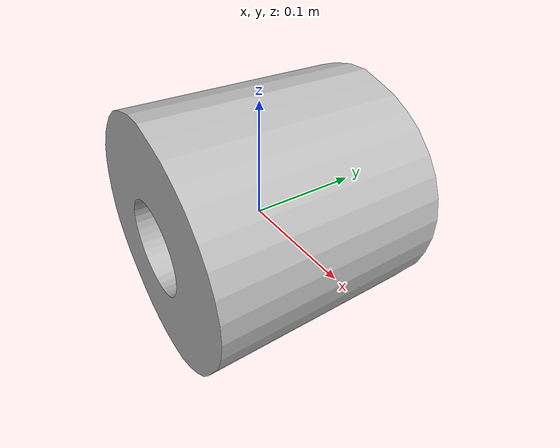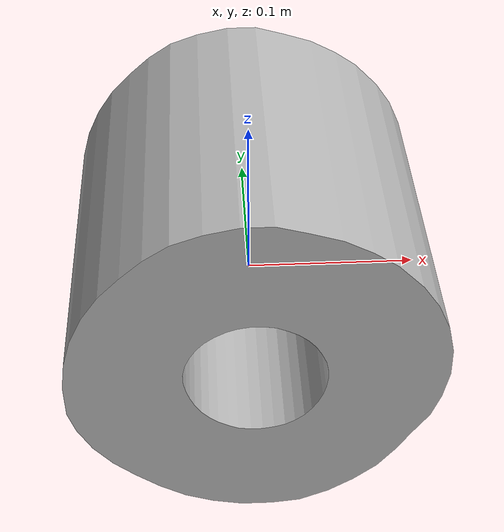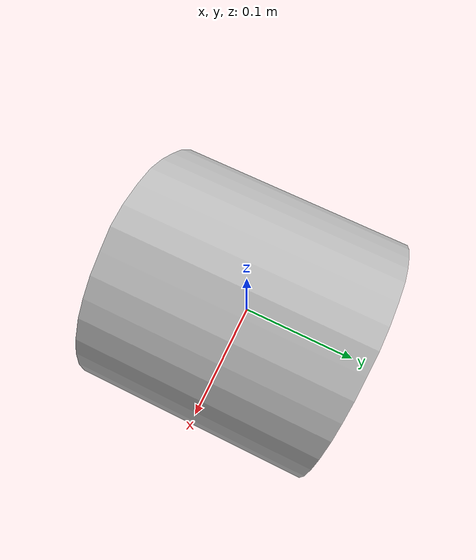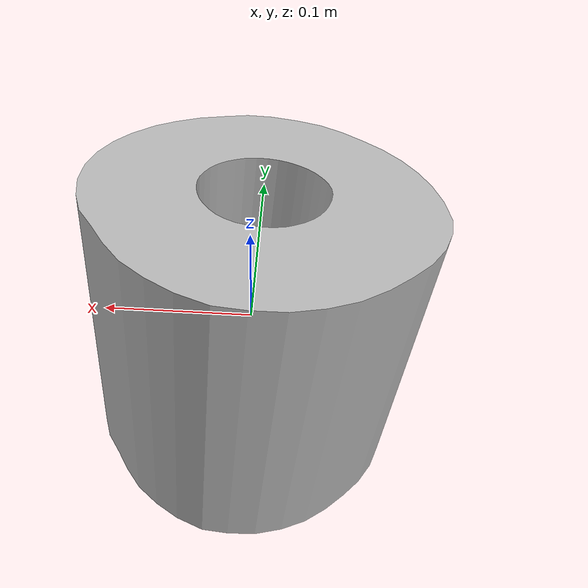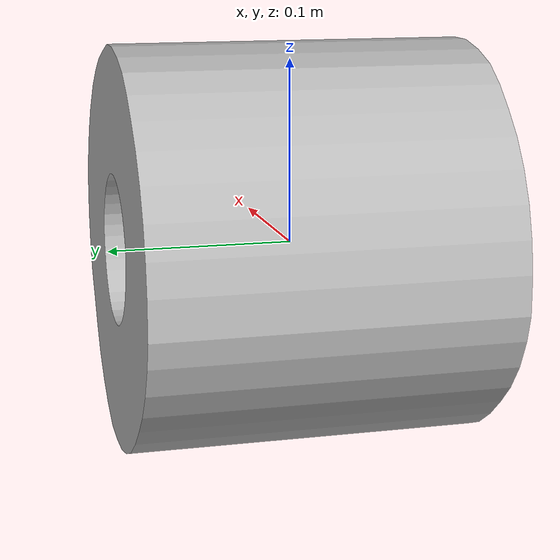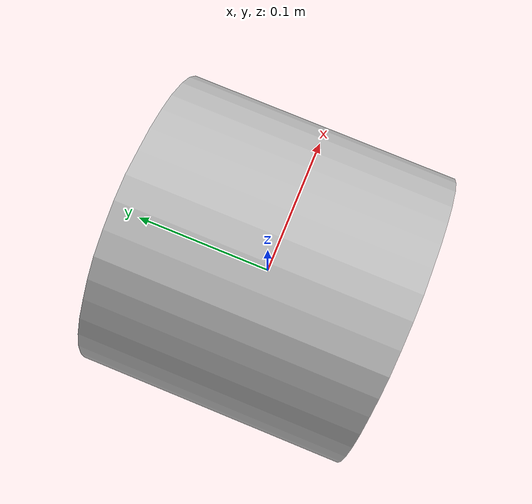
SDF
<?xml version="1.0" ?>
<sdf version="1.6">
  <model name="toilet_paper">
    <static>false</static>
    <link name="link">
      <inertial>
        <mass>6.4</mass>
        <inertia>
          <ixx>0.000021715</ixx>
          <ixy>0</ixy>
          <ixz>0</ixz>
          <iyy>0.000021715</iyy>
          <iyz>0</iyz>
          <izz>0.00000178</izz>
        </inertia>
        <pose>0 0 0 0 0 0</pose>
      </inertial>
      <collision name="collision">
        <geometry>
          <mesh>
            <scale>0.05 0.05 0.05</scale>
            <uri>model://toilet_paper/meshes/ToiletPaperRoll.DAE</uri>
          </mesh>
        </geometry>
        <surface>
          <bounce>
            <restitution_coefficient>0</restitution_coefficient>
            <threshold>0.01</threshold>
          </bounce>
          <friction>
            <ode>
              <mu>1.2</mu>
              <mu2>1.2</mu2>
            </ode>
          </friction>
        </surface>
      </collision>
      <visual name="visual">
        <geometry>
          <mesh>
            <scale>0.05 0.05 0.05</scale>
            <uri>model://toilet_paper/meshes/ToiletPaperRoll.DAE</uri>
          </mesh>
        </geometry>
      </visual>
    </link>
  </model>
</sdf>
